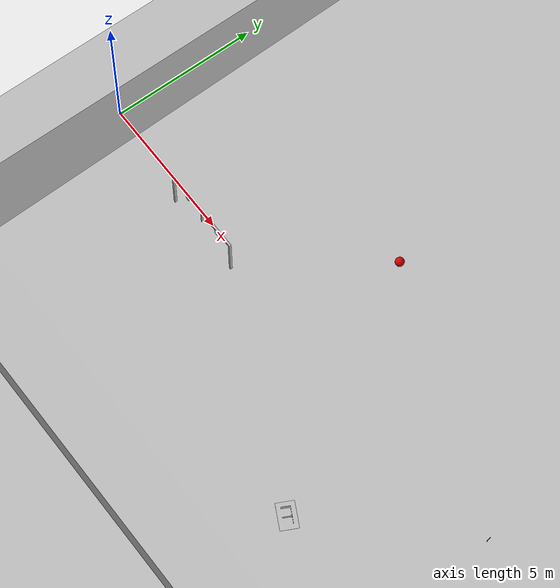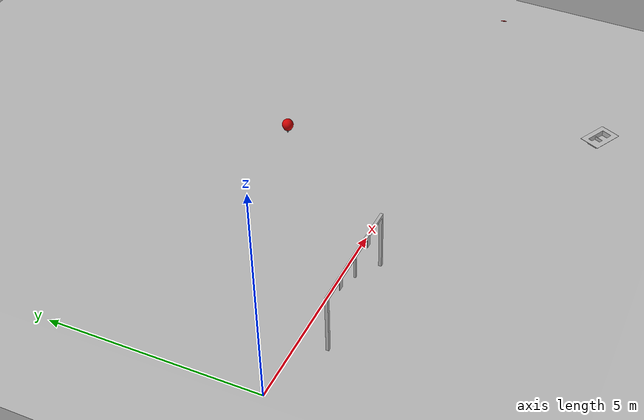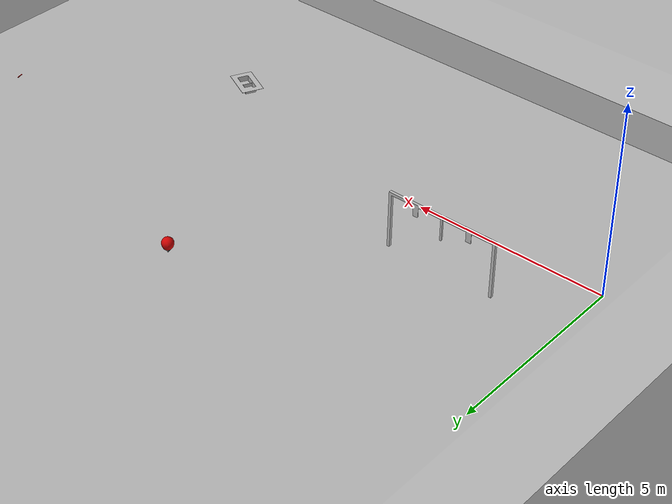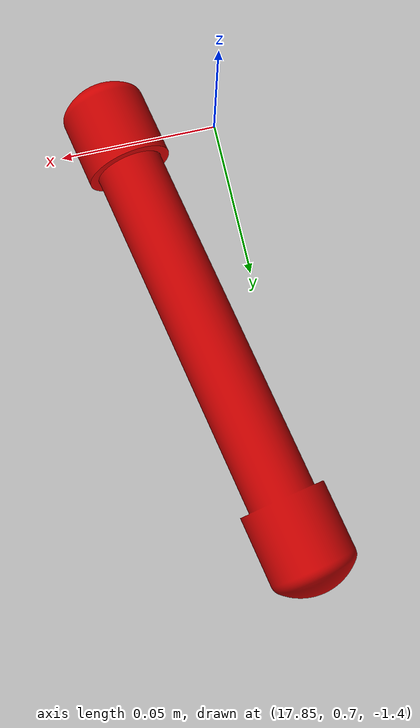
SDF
<sdf version="1.4">
 <world name="umd">
  <physics name="default_physics" default="true" type="ode">
   <max_step_size>0.002</max_step_size>
   <real_time_factor>1</real_time_factor>
   <real_time_update_rate>500</real_time_update_rate>
  </physics>
  <scene>
   <ambient>0.5 0.5 0.5 1.0</ambient>
   <sky><clouds><speed>12</speed></clouds></sky>
   <shadows>1</shadows>
   <fog>
    <color>0.1 0.2 0.3 1.0</color>
    <type>linear</type>
    <density>0.1</density>
    <start>1</start>
    <end>40</end>
   </fog>
  </scene>
  <spherical_coordinates>
   <latitude_deg>56.71897669633431</latitude_deg>
   <longitude_deg>3.515625</longitude_deg>
  </spherical_coordinates>
  <light type="directional" name="sun">
   <pose>-50 -50 150 0 0 0</pose>
   <diffuse>0.5 0.5 0.5 1</diffuse>
   <specular>.1 .1 .1 1</specular>
   <direction>0.3 0.3 -1</direction>
   <cast_shadows>false</cast_shadows>
  </light>
  <light type="directional" name="sun_diffuse">
   <pose>-50 0 -150 0 0 0</pose>
   <diffuse>0.6 0.6 0.6 1</diffuse>
   <specular>0 0 0 1</specular>
   <direction>-0.3 -0.3 -1</direction>
   <cast_shadows>false</cast_shadows>
  </light>
  <include><uri>model://umd</uri><name>ok</name><pose>10.83 -7.0 0 0 0 1.57</pose></include>
  <include><uri>model://gate_24</uri><pose>4.37 0.0 0 0 0 0</pose></include>
  <include><name>bin</name><uri>model://bin_24</uri><pose>13.5 -3.5 -2.0 0 0 1.1</pose></include>
  <include><uri>model://buoy_24</uri><pose>9.18 4.12 -0.75 0 0 0</pose></include>
  <include><name>worm</name><uri>model://sample_24_worm</uri><pose>17.85 0.85 -1.4 1.57 0 0.2</pose></include>
  <plugin name="sc_interface" filename="libuuv_sc_ros_interface_plugin.so"/>
 </world>
</sdf>

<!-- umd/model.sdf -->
<sdf version="1.5">
  <model name="umd">
    <static>true</static>
    <link name="base_link">

      <collision name="collision">
        <pose>0 0 0 0 0 0</pose>
        <geometry>
          <mesh>
            <uri>model://umd/meshes/umd.dae</uri>
          </mesh>
        </geometry>
      </collision>

      <visual name="visual">
        <cast_shadows>true</cast_shadows>
        <pose>0 0 0 0 0 0</pose>
        <geometry>
          <mesh>
            <uri>model://umd/meshes/umd.dae</uri>
          </mesh>
        </geometry>
      </visual>
    </link>
  </model>
</sdf>

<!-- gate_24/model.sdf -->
<sdf version="1.5">
  <model name="gate">
    <static>true</static>
    <link name="base_link">

      <collision name="collision">
        <pose>0 0 0 0 0 0</pose>
        <geometry>
          <mesh>
            <uri>model://gate_24/meshes/gate.dae</uri>
          </mesh>
        </geometry>
      </collision>

      <visual name="visual">
        <cast_shadows>true</cast_shadows>
        <pose>0 0 0 0 0 0</pose>
        <geometry>
          <mesh>
            <uri>model://gate_24/meshes/gate.dae</uri>
          </mesh>
        </geometry>
      </visual>
    </link>
  </model>
</sdf>

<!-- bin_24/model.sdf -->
<sdf version="1.5">
  <model name="path_marker">
    <static>true</static>
    <link name="base_link">

      <collision name="collision">
        <pose>0 0 0 0 0 0</pose>
        <geometry>
          <mesh>
            <uri>model://bin_24/meshes/bin_24.dae</uri>
          </mesh>
        </geometry>
      </collision>

      <visual name="visual">
        <cast_shadows>true</cast_shadows>
        <pose>0 0 0 0 0 0</pose>
        <geometry>
          <mesh>
            <uri>model://bin_24/meshes/bin_24.dae</uri>
          </mesh>
        </geometry>
      </visual>
    </link>
  </model>
</sdf>

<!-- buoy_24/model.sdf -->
<sdf version="1.5">
  <model name="buoy_gun">
    <static>true</static>
    <link name="base_link">

      <collision name="collision">
        <pose>0 0 0 0 0 0</pose>
        <geometry>
          <mesh>
            <uri>model://buoy_24/meshes/buoy_24.dae</uri>
          </mesh>
        </geometry>
      </collision>

      <visual name="visual">
        <cast_shadows>true</cast_shadows>
        <pose>0 0 0 0 0 0</pose>
        <geometry>
          <mesh>
            <uri>model://buoy_24/meshes/buoy_24.dae</uri>
          </mesh>
        </geometry>
      </visual>
    </link>
  </model>
</sdf>

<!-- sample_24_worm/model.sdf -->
<sdf version="1.5">
  <model name="path_marker">
    <static>true</static>
    <link name="base_link">

      <collision name="collision">
        <pose>0 0 0 0 0 0</pose>
        <geometry>
          <mesh>
            <uri>model://sample_24_worm/meshes/worm.dae</uri>
          </mesh>
        </geometry>
      </collision>

      <visual name="visual">
        <cast_shadows>true</cast_shadows>
        <pose>0 0 0 0 0 0</pose>
        <geometry>
          <mesh>
            <uri>model://sample_24_worm/meshes/worm.dae</uri>
          </mesh>
        </geometry>
      </visual>
    </link>
  </model>
</sdf>
